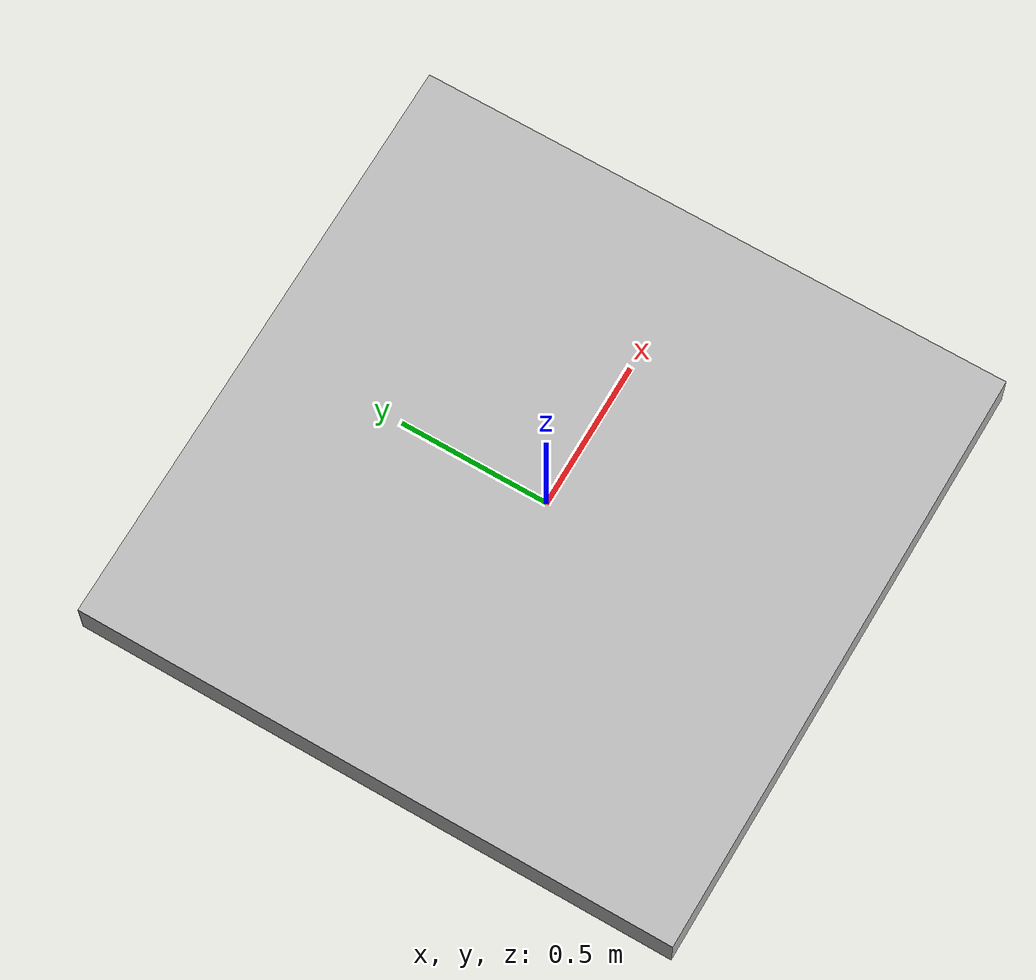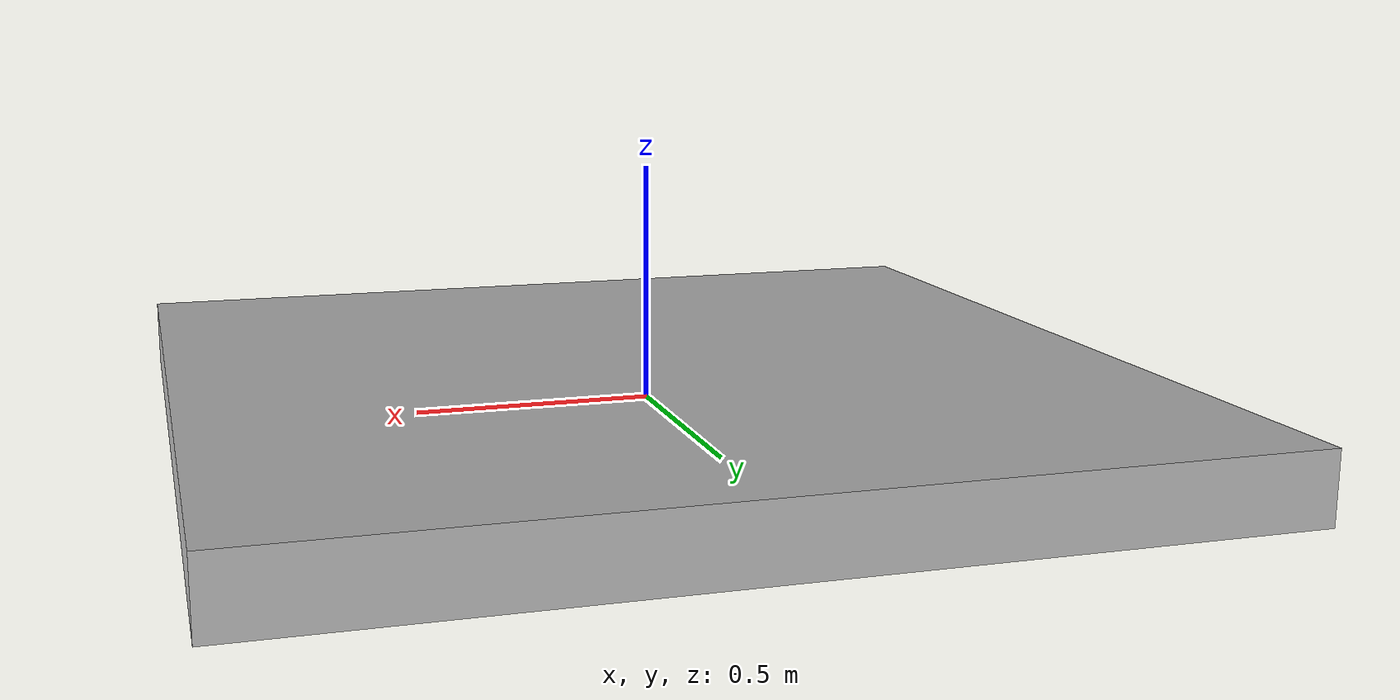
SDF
<?xml version='1.0'?>
<sdf version='1.4'>
  <model name='apriltag'>
    <static>true</static>
    <link name='link'>
      <collision name='collision'>
        <geometry>
          <box>
            <size>2 2 0.15</size>
          </box>
        </geometry>
        <surface>
          <friction>
            <ode>
              <mu>0.5</mu>
              <mu2>.5</mu2>
            </ode>
          </friction>
        </surface>
      </collision>

      <visual name='visual_0'>
        <pose>0 0 0 0 0 0</pose>
        <cast_shadows>false</cast_shadows>

        <geometry>
          <box>
            <size>2 2 0.15</size>
          </box>
        </geometry>

        <material>
          <script>
            <uri>model://apriltag/materials/scripts</uri>
            <uri>model://apriltag/materials/textures</uri>
            <name>vrc/apriltag</name>
          </script>
        </material>
      </visual>

    </link>
  </model>
</sdf>
